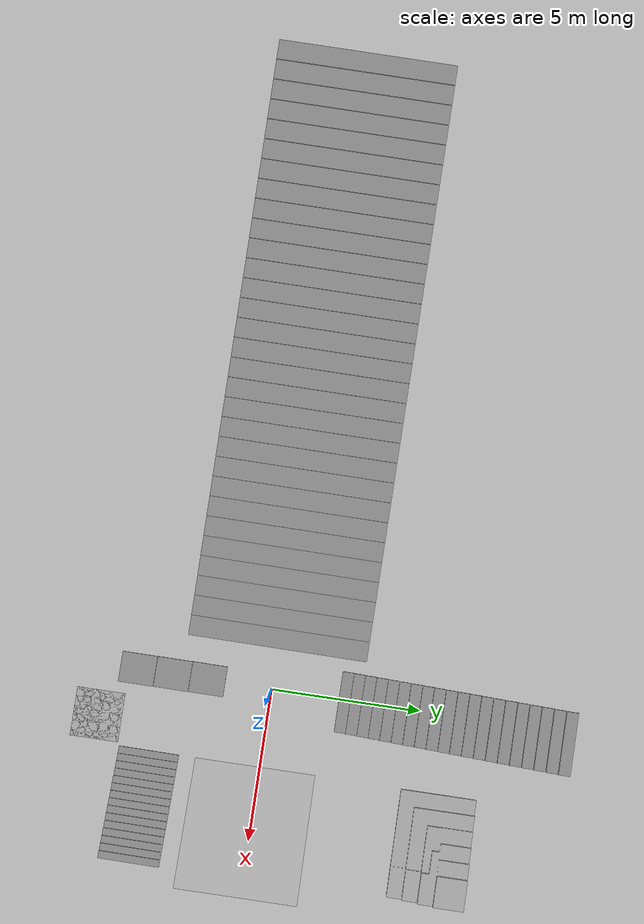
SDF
<sdf version="1.7">
 <world name="default">
  <physics type="ode">
   <max_step_size>0.001</max_step_size>
   <real_time_update_rate>1000</real_time_update_rate>
   <real_time_factor>1</real_time_factor>
   <type>world</type>
   <iters>500</iters>
  </physics>
  <light name="sun" type="directional">
   <pose>0 0 10 0 -0 0</pose>
   <diffuse>0.8 0.8 0.8 1</diffuse>
   <specular>0.2 0.2 0.2 1</specular>
   <attenuation>
    <range>1000</range>
    <constant>0.9</constant>
    <linear>0.01</linear>
    <quadratic>0.001</quadratic>
   </attenuation>
   <direction>-0.5 0.1 -0.9</direction>
   <spot><inner_angle>0</inner_angle><outer_angle>0</outer_angle><falloff>0</falloff></spot>
  </light>
  <model name="ground_plane">
   <static>1</static>
   <link name="link">
    <collision name="collision">
     <geometry><plane><normal>0 0 1</normal><size>100 100</size></plane></geometry>
     <surface>
      <contact><collide_bitmask>65535</collide_bitmask></contact>
      <friction><ode><mu>100</mu><mu2>50</mu2></ode></friction>
     </surface>
    </collision>
    <visual name="visual">
     <cast_shadows>0</cast_shadows>
     <geometry><plane><normal>0 0 1</normal><size>100 100</size></plane></geometry>
     <material>
      <script><uri>file://media/materials/scripts/gazebo.material</uri><name>Gazebo/Grey</name></script>
     </material>
    </visual>
   </link>
  </model>
  <gravity>0 0 -9.8</gravity>
  <magnetic_field>6e-06 2.3e-05 -4.2e-05</magnetic_field>
  <atmosphere type="adiabatic"/>
  <scene><ambient>0.4 0.4 0.4 1</ambient><background>0.7 0.7 0.7 1</background><shadows>1</shadows></scene>
  <spherical_coordinates>
   <surface_model>EARTH_WGS84</surface_model>
   <latitude_deg>0</latitude_deg>
   <longitude_deg>0</longitude_deg>
   <elevation>0</elevation>
   <heading_deg>0</heading_deg>
  </spherical_coordinates>
  <model name="stair4">
   <pose>3.20247 -3.69942 0 0 -0 1.56364</pose>
   <link name="Stairs_0">
    <visual name="Stairs_0_Visual_0">
     <pose>-0 0.508333 0.026667 0 -0 0</pose>
     <geometry><box><size>2 0.233333 0.053333</size></box></geometry>
     <material>
      <script><uri>file://media/materials/scripts/gazebo.material</uri><name>Gazebo/Grey</name></script>
      <ambient>1 1 1 1</ambient>
     </material>
     <meta><layer>0</layer></meta>
    </visual>
    <collision name="Stairs_0_Collision_0">
     <geometry><box><size>2 0.233333 0.053333</size></box></geometry>
     <pose>-0 0.508333 0.026667 0 -0 0</pose>
    </collision>
    <visual name="Stairs_0_Visual_1">
     <pose>-0 0.275 0.08 0 -0 0</pose>
     <geometry><box><size>2 0.233333 0.053333</size></box></geometry>
     <material>
      <script><uri>file://media/materials/scripts/gazebo.material</uri><name>Gazebo/Grey</name></script>
      <ambient>1 1 1 1</ambient>
     </material>
     <meta><layer>0</layer></meta>
    </visual>
    <collision name="Stairs_0_Collision_1">
     <geometry><box><size>2 0.233333 0.053333</size></box></geometry>
     <pose>-0 0.275 0.08 0 -0 0</pose>
    </collision>
    <visual name="Stairs_0_Visual_2">
     <pose>-0 0.041667 0.133333 0 -0 0</pose>
     <geometry><box><size>2 0.233333 0.053333</size></box></geometry>
     <material>
      <script><uri>file://media/materials/scripts/gazebo.material</uri><name>Gazebo/Grey</name></script>
      <ambient>1 1 1 1</ambient>
     </material>
     <meta><layer>0</layer></meta>
    </visual>
    <collision name="Stairs_0_Collision_2">
     <geometry><box><size>2 0.233333 0.053333</size></box></geometry>
     <pose>-0 0.041667 0.133333 0 -0 0</pose>
    </collision>
    <visual name="Stairs_0_Visual_3">
     <pose>-0 -0.191667 0.186667 0 -0 0</pose>
     <geometry><box><size>2 0.233333 0.053333</size></box></geometry>
     <material>
      <script><uri>file://media/materials/scripts/gazebo.material</uri><name>Gazebo/Grey</name></script>
      <ambient>1 1 1 1</ambient>
     </material>
     <meta><layer>0</layer></meta>
    </visual>
    <collision name="Stairs_0_Collision_3">
     <geometry><box><size>2 0.233333 0.053333</size></box></geometry>
     <pose>-0 -0.191667 0.186667 0 -0 0</pose>
    </collision>
    <visual name="Stairs_0_Visual_4">
     <pose>-0 -0.425 0.24 0 -0 0</pose>
     <geometry><box><size>2 0.233333 0.053333</size></box></geometry>
     <material>
      <script><uri>file://media/materials/scripts/gazebo.material</uri><name>Gazebo/Grey</name></script>
      <ambient>1 1 1 1</ambient>
     </material>
     <meta><layer>0</layer></meta>
    </visual>
    <collision name="Stairs_0_Collision_4">
     <geometry><box><size>2 0.233333 0.053333</size></box></geometry>
     <pose>-0 -0.425 0.24 0 -0 0</pose>
    </collision>
    <visual name="Stairs_0_Visual_5">
     <pose>-0 -0.658333 0.293333 0 -0 0</pose>
     <geometry><box><size>2 0.233333 0.053333</size></box></geometry>
     <material>
      <script><uri>file://media/materials/scripts/gazebo.material</uri><name>Gazebo/Grey</name></script>
      <ambient>1 1 1 1</ambient>
     </material>
     <meta><layer>0</layer></meta>
    </visual>
    <collision name="Stairs_0_Collision_5">
     <geometry><box><size>2 0.233333 0.053333</size></box></geometry>
     <pose>-0 -0.658333 0.293333 0 -0 0</pose>
    </collision>
    <visual name="Stairs_0_Visual_6">
     <pose>-0 -0.891667 0.346667 0 -0 0</pose>
     <geometry><box><size>2 0.233333 0.053333</size></box></geometry>
     <material>
      <script><uri>file://media/materials/scripts/gazebo.material</uri><name>Gazebo/Grey</name></script>
      <ambient>1 1 1 1</ambient>
     </material>
     <meta><layer>0</layer></meta>
    </visual>
    <collision name="Stairs_0_Collision_6">
     <geometry><box><size>2 0.233333 0.053333</size></box></geometry>
     <pose>-0 -0.891667 0.346667 0 -0 0</pose>
    </collision>
    <visual name="Stairs_0_Visual_7">
     <pose>-0 -1.125 0.4 0 -0 0</pose>
     <geometry><box><size>2 0.233333 0.053333</size></box></geometry>
     <material>
      <script><uri>file://media/materials/scripts/gazebo.material</uri><name>Gazebo/Grey</name></script>
      <ambient>1 1 1 1</ambient>
     </material>
     <meta><layer>0</layer></meta>
    </visual>
    <collision name="Stairs_0_Collision_7">
     <geometry><box><size>2 0.233333 0.053333</size></box></geometry>
     <pose>-0 -1.125 0.4 0 -0 0</pose>
    </collision>
    <visual name="Stairs_0_Visual_8">
     <pose>-0 -1.35833 0.453333 0 -0 0</pose>
     <geometry><box><size>2 0.233333 0.053333</size></box></geometry>
     <material>
      <script><uri>file://media/materials/scripts/gazebo.material</uri><name>Gazebo/Grey</name></script>
      <ambient>1 1 1 1</ambient>
     </material>
     <meta><layer>0</layer></meta>
    </visual>
    <collision name="Stairs_0_Collision_8">
     <geometry><box><size>2 0.233333 0.053333</size></box></geometry>
     <pose>-0 -1.35833 0.453333 0 -0 0</pose>
    </collision>
    <visual name="Stairs_0_Visual_9">
     <pose>-0 -1.59167 0.506667 0 -0 0</pose>
     <geometry><box><size>2 0.233333 0.053333</size></box></geometry>
     <material>
      <script><uri>file://media/materials/scripts/gazebo.material</uri><name>Gazebo/Grey</name></script>
      <ambient>1 1 1 1</ambient>
     </material>
     <meta><layer>0</layer></meta>
    </visual>
    <collision name="Stairs_0_Collision_9">
     <geometry><box><size>2 0.233333 0.053333</size></box></geometry>
     <pose>-0 -1.59167 0.506667 0 -0 0</pose>
    </collision>
    <visual name="Stairs_0_Visual_10">
     <pose>-0 -1.825 0.56 0 -0 0</pose>
     <geometry><box><size>2 0.233333 0.053333</size></box></geometry>
     <material>
      <script><uri>file://media/materials/scripts/gazebo.material</uri><name>Gazebo/Grey</name></script>
      <ambient>1 1 1 1</ambient>
     </material>
     <meta><layer>0</layer></meta>
    </visual>
    <collision name="Stairs_0_Collision_10">
     <geometry><box><size>2 0.233333 0.053333</size></box></geometry>
     <pose>-0 -1.825 0.56 0 -0 0</pose>
    </collision>
    <visual name="Stairs_0_Visual_11">
     <pose>-0 -2.05833 0.613333 0 -0 0</pose>
     <geometry><box><size>2 0.233333 0.053333</size></box></geometry>
     <material>
      <script><uri>file://media/materials/scripts/gazebo.material</uri><name>Gazebo/Grey</name></script>
      <ambient>1 1 1 1</ambient>
     </material>
     <meta><layer>0</layer></meta>
    </visual>
    <collision name="Stairs_0_Collision_11">
     <geometry><box><size>2 0.233333 0.053333</size></box></geometry>
     <pose>-0 -2.05833 0.613333 0 -0 0</pose>
    </collision>
    <visual name="Stairs_0_Visual_12">
     <pose>-0 -2.29167 0.666667 0 -0 0</pose>
     <geometry><box><size>2 0.233333 0.053333</size></box></geometry>
     <material>
      <script><uri>file://media/materials/scripts/gazebo.material</uri><name>Gazebo/Grey</name></script>
      <ambient>1 1 1 1</ambient>
     </material>
     <meta><layer>0</layer></meta>
    </visual>
    <collision name="Stairs_0_Collision_12">
     <geometry><box><size>2 0.233333 0.053333</size></box></geometry>
     <pose>-0 -2.29167 0.666667 0 -0 0</pose>
    </collision>
    <visual name="Stairs_0_Visual_13">
     <pose>-0 -2.525 0.72 0 -0 0</pose>
     <geometry><box><size>2 0.233333 0.053333</size></box></geometry>
     <material>
      <script><uri>file://media/materials/scripts/gazebo.material</uri><name>Gazebo/Grey</name></script>
      <ambient>1 1 1 1</ambient>
     </material>
     <meta><layer>0</layer></meta>
    </visual>
    <collision name="Stairs_0_Collision_13">
     <geometry><box><size>2 0.233333 0.053333</size></box></geometry>
     <pose>-0 -2.525 0.72 0 -0 0</pose>
    </collision>
    <visual name="Stairs_0_Visual_14">
     <pose>-0 -2.75833 0.773333 0 -0 0</pose>
     <geometry><box><size>2 0.233333 0.053333</size></box></geometry>
     <material>
      <script><uri>file://media/materials/scripts/gazebo.material</uri><name>Gazebo/Grey</name></script>
      <ambient>1 1 1 1</ambient>
     </material>
     <meta><layer>0</layer></meta>
    </visual>
    <collision name="Stairs_0_Collision_14">
     <geometry><box><size>2 0.233333 0.053333</size></box></geometry>
     <pose>-0 -2.75833 0.773333 0 -0 0</pose>
    </collision>
   </link>
   <static>1</static>
  </model>
  <model name="stair6">
   <pose>0.731241 -2.58494 0 0 0 -0.00559</pose>
   <link name="Stairs_3">
    <visual name="Stairs_3_Visual_0">
     <pose>-0.75 0.456667 0.033333 0 -0 0</pose>
     <geometry><box><size>1 1.16667 0.066667</size></box></geometry>
     <material>
      <script><uri>file://media/materials/scripts/gazebo.material</uri><name>Gazebo/Grey</name></script>
      <ambient>1 1 1 1</ambient>
     </material>
     <meta><layer>0</layer></meta>
    </visual>
    <collision name="Stairs_3_Collision_0">
     <geometry><box><size>1 1.16667 0.066667</size></box></geometry>
     <pose>-0.75 0.456667 0.033333 0 -0 0</pose>
    </collision>
    <visual name="Stairs_3_Visual_1">
     <pose>-0.75 -0.71 0.1 0 -0 0</pose>
     <geometry><box><size>1 1.16667 0.066667</size></box></geometry>
     <material>
      <script><uri>file://media/materials/scripts/gazebo.material</uri><name>Gazebo/Grey</name></script>
      <ambient>1 1 1 1</ambient>
     </material>
     <meta><layer>0</layer></meta>
    </visual>
    <collision name="Stairs_3_Collision_1">
     <geometry><box><size>1 1.16667 0.066667</size></box></geometry>
     <pose>-0.75 -0.71 0.1 0 -0 0</pose>
    </collision>
    <visual name="Stairs_3_Visual_2">
     <pose>-0.75 -1.87667 0.166667 0 -0 0</pose>
     <geometry><box><size>1 1.16667 0.066667</size></box></geometry>
     <material>
      <script><uri>file://media/materials/scripts/gazebo.material</uri><name>Gazebo/Grey</name></script>
      <ambient>1 1 1 1</ambient>
     </material>
     <meta><layer>0</layer></meta>
    </visual>
    <collision name="Stairs_3_Collision_2">
     <geometry><box><size>1 1.16667 0.066667</size></box></geometry>
     <pose>-0.75 -1.87667 0.166667 0 -0 0</pose>
    </collision>
   </link>
   <static>1</static>
  </model>
  <model name="cobblestones">
   <static>1</static>
   <link name="link">
    <pose>0 0 -0.09 0 -0 1.5708</pose>
    <collision name="collision">
     <geometry>
      <mesh><uri>model://cobblestones_1/mesh/cobblestones.dae</uri><scale>0.175 0.175 0.25</scale></mesh>
     </geometry>
     <surface>
      <bounce><restitution_coefficient>0.01</restitution_coefficient><threshold>5</threshold></bounce>
      <friction><ode><mu>10</mu><mu2>10</mu2></ode></friction>
      <contact><ode><soft_cfm>0.001</soft_cfm><kp>100000</kp><kd>1000</kd></ode></contact>
     </surface>
    </collision>
    <visual name="visual">
     <geometry>
      <mesh><uri>model://cobblestones_1/mesh/cobblestones.dae</uri><scale>0.175 0.175 0.25</scale></mesh>
     </geometry>
    </visual>
   </link>
   <pose>1.65569 -5.65922 0 0 -0 0</pose>
  </model>
  <model name="complex_stairs">
   <static>1</static>
   <link name="link">
    <pose>0 0 0 1.57 -0 0</pose>
    <collision name="collision">
     <geometry><mesh><uri>model://complex_stairs_1/mesh/stairs.dae</uri><scale>1 1 1</scale></mesh></geometry>
    </collision>
    <visual name="visual">
     <geometry><mesh><uri>model://complex_stairs_1/mesh/stairs.dae</uri><scale>1 1 1</scale></mesh></geometry>
    </visual>
   </link>
   <pose>2.59649 6.727 0 0 -0 0</pose>
  </model>
  <model name="15_degree_ramp">
   <static>1</static>
   <link name="link">
    <collision name="collision">
     <geometry><mesh><uri>model://ramp_45/mesh/ramp_45.dae</uri><scale>2 2 0.5358</scale></mesh></geometry>
     <surface><friction><ode><mu>10</mu><mu2>10</mu2></ode></friction></surface>
    </collision>
    <visual name="visual">
     <geometry><mesh><uri>model://ramp_45/mesh/ramp_45.dae</uri><scale>2 2 0.5358</scale></mesh></geometry>
    </visual>
   </link>
   <pose>4.58676 -0.145618 0 0 -0 -3.13945</pose>
  </model>
  <model name="stair5cm">
   <pose>0.098797 6.02113 0 0 -0 3.13537</pose>
   <link name="Stairs_1">
    <visual name="Stairs_1_Visual_0">
     <pose>0 3.5625 0.05 0 -0 0</pose>
     <geometry><box><size>2 0.375 0.1</size></box></geometry>
     <material>
      <script><uri>file://media/materials/scripts/gazebo.material</uri><name>Gazebo/Grey</name></script>
      <ambient>1 1 1 1</ambient>
     </material>
     <meta><layer>0</layer></meta>
    </visual>
    <collision name="Stairs_1_Collision_0">
     <geometry><box><size>2 0.375 0.1</size></box></geometry>
     <pose>0 3.5625 0.05 0 -0 0</pose>
    </collision>
    <visual name="Stairs_1_Visual_1">
     <pose>0 3.1875 0.15 0 -0 0</pose>
     <geometry><box><size>2 0.375 0.1</size></box></geometry>
     <material>
      <script><uri>file://media/materials/scripts/gazebo.material</uri><name>Gazebo/Grey</name></script>
      <ambient>1 1 1 1</ambient>
     </material>
     <meta><layer>0</layer></meta>
    </visual>
    <collision name="Stairs_1_Collision_1">
     <geometry><box><size>2 0.375 0.1</size></box></geometry>
     <pose>0 3.1875 0.15 0 -0 0</pose>
    </collision>
    <visual name="Stairs_1_Visual_2">
     <pose>0 2.8125 0.25 0 -0 0</pose>
     <geometry><box><size>2 0.375 0.1</size></box></geometry>
     <material>
      <script><uri>file://media/materials/scripts/gazebo.material</uri><name>Gazebo/Grey</name></script>
      <ambient>1 1 1 1</ambient>
     </material>
     <meta><layer>0</layer></meta>
    </visual>
    <collision name="Stairs_1_Collision_2">
     <geometry><box><size>2 0.375 0.1</size></box></geometry>
     <pose>0 2.8125 0.25 0 -0 0</pose>
    </collision>
    <visual name="Stairs_1_Visual_3">
     <pose>0 2.4375 0.35 0 -0 0</pose>
     <geometry><box><size>2 0.375 0.1</size></box></geometry>
     <material>
      <script><uri>file://media/materials/scripts/gazebo.material</uri><name>Gazebo/Grey</name></script>
      <ambient>1 1 1 1</ambient>
     </material>
     <meta><layer>0</layer></meta>
    </visual>
    <collision name="Stairs_1_Collision_3">
     <geometry><box><size>2 0.375 0.1</size></box></geometry>
     <pose>0 2.4375 0.35 0 -0 0</pose>
    </collision>
    <visual name="Stairs_1_Visual_4">
     <pose>0 2.0625 0.45 0 -0 0</pose>
     <geometry><box><size>2 0.375 0.1</size></box></geometry>
     <material>
      <script><uri>file://media/materials/scripts/gazebo.material</uri><name>Gazebo/Grey</name></script>
      <ambient>1 1 1 1</ambient>
     </material>
     <meta><layer>0</layer></meta>
    </visual>
    <collision name="Stairs_1_Collision_4">
     <geometry><box><size>2 0.375 0.1</size></box></geometry>
     <pose>0 2.0625 0.45 0 -0 0</pose>
    </collision>
    <visual name="Stairs_1_Visual_5">
     <pose>0 1.6875 0.55 0 -0 0</pose>
     <geometry><box><size>2 0.375 0.1</size></box></geometry>
     <material>
      <script><uri>file://media/materials/scripts/gazebo.material</uri><name>Gazebo/Grey</name></script>
      <ambient>1 1 1 1</ambient>
     </material>
     <meta><layer>0</layer></meta>
    </visual>
    <collision name="Stairs_1_Collision_5">
     <geometry><box><size>2 0.375 0.1</size></box></geometry>
     <pose>0 1.6875 0.55 0 -0 0</pose>
    </collision>
    <visual name="Stairs_1_Visual_6">
     <pose>0 1.3125 0.65 0 -0 0</pose>
     <geometry><box><size>2 0.375 0.1</size></box></geometry>
     <material>
      <script><uri>file://media/materials/scripts/gazebo.material</uri><name>Gazebo/Grey</name></script>
      <ambient>1 1 1 1</ambient>
     </material>
     <meta><layer>0</layer></meta>
    </visual>
    <collision name="Stairs_1_Collision_6">
     <geometry><box><size>2 0.375 0.1</size></box></geometry>
     <pose>0 1.3125 0.65 0 -0 0</pose>
    </collision>
    <visual name="Stairs_1_Visual_7">
     <pose>0 0.9375 0.75 0 -0 0</pose>
     <geometry><box><size>2 0.375 0.1</size></box></geometry>
     <material>
      <script><uri>file://media/materials/scripts/gazebo.material</uri><name>Gazebo/Grey</name></script>
      <ambient>1 1 1 1</ambient>
     </material>
     <meta><layer>0</layer></meta>
    </visual>
    <collision name="Stairs_1_Collision_7">
     <geometry><box><size>2 0.375 0.1</size></box></geometry>
     <pose>0 0.9375 0.75 0 -0 0</pose>
    </collision>
    <visual name="Stairs_1_Visual_8">
     <pose>0 0.5625 0.85 0 -0 0</pose>
     <geometry><box><size>2 0.375 0.1</size></box></geometry>
     <material>
      <script><uri>file://media/materials/scripts/gazebo.material</uri><name>Gazebo/Grey</name></script>
      <ambient>1 1 1 1</ambient>
     </material>
     <meta><layer>0</layer></meta>
    </visual>
    <collision name="Stairs_1_Collision_8">
     <geometry><box><size>2 0.375 0.1</size></box></geometry>
     <pose>0 0.5625 0.85 0 -0 0</pose>
    </collision>
    <visual name="Stairs_1_Visual_9">
     <pose>0 0.1875 0.95 0 -0 0</pose>
     <geometry><box><size>2 0.375 0.1</size></box></geometry>
     <material>
      <script><uri>file://media/materials/scripts/gazebo.material</uri><name>Gazebo/Grey</name></script>
      <ambient>1 1 1 1</ambient>
     </material>
     <meta><layer>0</layer></meta>
    </visual>
    <collision name="Stairs_1_Collision_9">
     <geometry><box><size>2 0.375 0.1</size></box></geometry>
     <pose>0 0.1875 0.95 0 -0 0</pose>
    </collision>
    <visual name="Stairs_1_Visual_10">
     <pose>0 -0.1875 1.05 0 -0 0</pose>
     <geometry><box><size>2 0.375 0.1</size></box></geometry>
     <material>
      <script><uri>file://media/materials/scripts/gazebo.material</uri><name>Gazebo/Grey</name></script>
      <ambient>1 1 1 1</ambient>
     </material>
     <meta><layer>0</layer></meta>
    </visual>
    <collision name="Stairs_1_Collision_10">
     <geometry><box><size>2 0.375 0.1</size></box></geometry>
     <pose>0 -0.1875 1.05 0 -0 0</pose>
    </collision>
    <visual name="Stairs_1_Visual_11">
     <pose>0 -0.5625 1.15 0 -0 0</pose>
     <geometry><box><size>2 0.375 0.1</size></box></geometry>
     <material>
      <script><uri>file://media/materials/scripts/gazebo.material</uri><name>Gazebo/Grey</name></script>
      <ambient>1 1 1 1</ambient>
     </material>
     <meta><layer>0</layer></meta>
    </visual>
    <collision name="Stairs_1_Collision_11">
     <geometry><box><size>2 0.375 0.1</size></box></geometry>
     <pose>0 -0.5625 1.15 0 -0 0</pose>
    </collision>
    <visual name="Stairs_1_Visual_12">
     <pose>0 -0.9375 1.25 0 -0 0</pose>
     <geometry><box><size>2 0.375 0.1</size></box></geometry>
     <material>
      <script><uri>file://media/materials/scripts/gazebo.material</uri><name>Gazebo/Grey</name></script>
      <ambient>1 1 1 1</ambient>
     </material>
     <meta><layer>0</layer></meta>
    </visual>
    <collision name="Stairs_1_Collision_12">
     <geometry><box><size>2 0.375 0.1</size></box></geometry>
     <pose>0 -0.9375 1.25 0 -0 0</pose>
    </collision>
    <visual name="Stairs_1_Visual_13">
     <pose>0 -1.3125 1.35 0 -0 0</pose>
     <geometry><box><size>2 0.375 0.1</size></box></geometry>
     <material>
      <script><uri>file://media/materials/scripts/gazebo.material</uri><name>Gazebo/Grey</name></script>
      <ambient>1 1 1 1</ambient>
     </material>
     <meta><layer>0</layer></meta>
    </visual>
    <collision name="Stairs_1_Collision_13">
     <geometry><box><size>2 0.375 0.1</size></box></geometry>
     <pose>0 -1.3125 1.35 0 -0 0</pose>
    </collision>
    <visual name="Stairs_1_Visual_14">
     <pose>0 -1.6875 1.45 0 -0 0</pose>
     <geometry><box><size>2 0.375 0.1</size></box></geometry>
     <material>
      <script><uri>file://media/materials/scripts/gazebo.material</uri><name>Gazebo/Grey</name></script>
      <ambient>1 1 1 1</ambient>
     </material>
     <meta><layer>0</layer></meta>
    </visual>
    <collision name="Stairs_1_Collision_14">
     <geometry><box><size>2 0.375 0.1</size></box></geometry>
     <pose>0 -1.6875 1.45 0 -0 0</pose>
    </collision>
    <visual name="Stairs_1_Visual_15">
     <pose>0 -2.0625 1.55 0 -0 0</pose>
     <geometry><box><size>2 0.375 0.1</size></box></geometry>
     <material>
      <script><uri>file://media/materials/scripts/gazebo.material</uri><name>Gazebo/Grey</name></script>
      <ambient>1 1 1 1</ambient>
     </material>
     <meta><layer>0</layer></meta>
    </visual>
    <collision name="Stairs_1_Collision_15">
     <geometry><box><size>2 0.375 0.1</size></box></geometry>
     <pose>0 -2.0625 1.55 0 -0 0</pose>
    </collision>
    <visual name="Stairs_1_Visual_16">
     <pose>0 -2.4375 1.65 0 -0 0</pose>
     <geometry><box><size>2 0.375 0.1</size></box></geometry>
     <material>
      <script><uri>file://media/materials/scripts/gazebo.material</uri><name>Gazebo/Grey</name></script>
      <ambient>1 1 1 1</ambient>
     </material>
     <meta><layer>0</layer></meta>
    </visual>
    <collision name="Stairs_1_Collision_16">
     <geometry><box><size>2 0.375 0.1</size></box></geometry>
     <pose>0 -2.4375 1.65 0 -0 0</pose>
    </collision>
    <visual name="Stairs_1_Visual_17">
     <pose>0 -2.8125 1.75 0 -0 0</pose>
     <geometry><box><size>2 0.375 0.1</size></box></geometry>
     <material>
      <script><uri>file://media/materials/scripts/gazebo.material</uri><name>Gazebo/Grey</name></script>
      <ambient>1 1 1 1</ambient>
     </material>
     <meta><layer>0</layer></meta>
    </visual>
    <collision name="Stairs_1_Collision_17">
     <geometry><box><size>2 0.375 0.1</size></box></geometry>
     <pose>0 -2.8125 1.75 0 -0 0</pose>
    </collision>
    <visual name="Stairs_1_Visual_18">
     <pose>0 -3.1875 1.85 0 -0 0</pose>
     <geometry><box><size>2 0.375 0.1</size></box></geometry>
     <material>
      <script><uri>file://media/materials/scripts/gazebo.material</uri><name>Gazebo/Grey</name></script>
      <ambient>1 1 1 1</ambient>
     </material>
     <meta><layer>0</layer></meta>
    </visual>
    <collision name="Stairs_1_Collision_18">
     <geometry><box><size>2 0.375 0.1</size></box></geometry>
     <pose>0 -3.1875 1.85 0 -0 0</pose>
    </collision>
    <visual name="Stairs_1_Visual_19">
     <pose>0 -3.5625 1.95 0 -0 0</pose>
     <geometry><box><size>2 0.375 0.1</size></box></geometry>
     <material>
      <script><uri>file://media/materials/scripts/gazebo.material</uri><name>Gazebo/Grey</name></script>
      <ambient>1 1 1 1</ambient>
     </material>
     <meta><layer>0</layer></meta>
    </visual>
    <collision name="Stairs_1_Collision_19">
     <geometry><box><size>2 0.375 0.1</size></box></geometry>
     <pose>0 -3.5625 1.95 0 -0 0</pose>
    </collision>
   </link>
   <static>1</static>
  </model>
  <model name="stair0.5">
   <pose>-11.3611 0.034345 0 0 0 -1.57612</pose>
   <link name="Stairs_1">
    <visual name="Stairs_1_Visual_0">
     <pose>-0.025 9.66667 0.025 0 -0 0</pose>
     <geometry><box><size>6 0.666667 0.05</size></box></geometry>
     <material>
      <script><uri>file://media/materials/scripts/gazebo.material</uri><name>Gazebo/Grey</name></script>
      <ambient>1 1 1 1</ambient>
     </material>
     <meta><layer>0</layer></meta>
    </visual>
    <collision name="Stairs_1_Collision_0">
     <geometry><box><size>6 0.666667 0.05</size></box></geometry>
     <pose>-0.025 9.66667 0.025 0 -0 0</pose>
    </collision>
    <visual name="Stairs_1_Visual_1">
     <pose>-0.025 9 0.075 0 -0 0</pose>
     <geometry><box><size>6 0.666667 0.05</size></box></geometry>
     <material>
      <script><uri>file://media/materials/scripts/gazebo.material</uri><name>Gazebo/Grey</name></script>
      <ambient>1 1 1 1</ambient>
     </material>
     <meta><layer>0</layer></meta>
    </visual>
    <collision name="Stairs_1_Collision_1">
     <geometry><box><size>6 0.666667 0.05</size></box></geometry>
     <pose>-0.025 9 0.075 0 -0 0</pose>
    </collision>
    <visual name="Stairs_1_Visual_2">
     <pose>-0.025 8.33333 0.125 0 -0 0</pose>
     <geometry><box><size>6 0.666667 0.05</size></box></geometry>
     <material>
      <script><uri>file://media/materials/scripts/gazebo.material</uri><name>Gazebo/Grey</name></script>
      <ambient>1 1 1 1</ambient>
     </material>
     <meta><layer>0</layer></meta>
    </visual>
    <collision name="Stairs_1_Collision_2">
     <geometry><box><size>6 0.666667 0.05</size></box></geometry>
     <pose>-0.025 8.33333 0.125 0 -0 0</pose>
    </collision>
    <visual name="Stairs_1_Visual_3">
     <pose>-0.025 7.66667 0.175 0 -0 0</pose>
     <geometry><box><size>6 0.666667 0.05</size></box></geometry>
     <material>
      <script><uri>file://media/materials/scripts/gazebo.material</uri><name>Gazebo/Grey</name></script>
      <ambient>1 1 1 1</ambient>
     </material>
     <meta><layer>0</layer></meta>
    </visual>
    <collision name="Stairs_1_Collision_3">
     <geometry><box><size>6 0.666667 0.05</size></box></geometry>
     <pose>-0.025 7.66667 0.175 0 -0 0</pose>
    </collision>
    <visual name="Stairs_1_Visual_4">
     <pose>-0.025 7 0.225 0 -0 0</pose>
     <geometry><box><size>6 0.666667 0.05</size></box></geometry>
     <material>
      <script><uri>file://media/materials/scripts/gazebo.material</uri><name>Gazebo/Grey</name></script>
      <ambient>1 1 1 1</ambient>
     </material>
     <meta><layer>0</layer></meta>
    </visual>
    <collision name="Stairs_1_Collision_4">
     <geometry><box><size>6 0.666667 0.05</size></box></geometry>
     <pose>-0.025 7 0.225 0 -0 0</pose>
    </collision>
    <visual name="Stairs_1_Visual_5">
     <pose>-0.025 6.33333 0.275 0 -0 0</pose>
     <geometry><box><size>6 0.666667 0.05</size></box></geometry>
     <material>
      <script><uri>file://media/materials/scripts/gazebo.material</uri><name>Gazebo/Grey</name></script>
      <ambient>1 1 1 1</ambient>
     </material>
     <meta><layer>0</layer></meta>
    </visual>
    <collision name="Stairs_1_Collision_5">
     <geometry><box><size>6 0.666667 0.05</size></box></geometry>
     <pose>-0.025 6.33333 0.275 0 -0 0</pose>
    </collision>
    <visual name="Stairs_1_Visual_6">
     <pose>-0.025 5.66667 0.325 0 -0 0</pose>
     <geometry><box><size>6 0.666667 0.05</size></box></geometry>
     <material>
      <script><uri>file://media/materials/scripts/gazebo.material</uri><name>Gazebo/Grey</name></script>
      <ambient>1 1 1 1</ambient>
     </material>
     <meta><layer>0</layer></meta>
    </visual>
    <collision name="Stairs_1_Collision_6">
     <geometry><box><size>6 0.666667 0.05</size></box></geometry>
     <pose>-0.025 5.66667 0.325 0 -0 0</pose>
    </collision>
    <visual name="Stairs_1_Visual_7">
     <pose>-0.025 5 0.375 0 -0 0</pose>
     <geometry><box><size>6 0.666667 0.05</size></box></geometry>
     <material>
      <script><uri>file://media/materials/scripts/gazebo.material</uri><name>Gazebo/Grey</name></script>
      <ambient>1 1 1 1</ambient>
     </material>
     <meta><layer>0</layer></meta>
    </visual>
    <collision name="Stairs_1_Collision_7">
     <geometry><box><size>6 0.666667 0.05</size></box></geometry>
     <pose>-0.025 5 0.375 0 -0 0</pose>
    </collision>
    <visual name="Stairs_1_Visual_8">
     <pose>-0.025 4.33333 0.425 0 -0 0</pose>
     <geometry><box><size>6 0.666667 0.05</size></box></geometry>
     <material>
      <script><uri>file://media/materials/scripts/gazebo.material</uri><name>Gazebo/Grey</name></script>
      <ambient>1 1 1 1</ambient>
     </material>
     <meta><layer>0</layer></meta>
    </visual>
    <collision name="Stairs_1_Collision_8">
     <geometry><box><size>6 0.666667 0.05</size></box></geometry>
     <pose>-0.025 4.33333 0.425 0 -0 0</pose>
    </collision>
    <visual name="Stairs_1_Visual_9">
     <pose>-0.025 3.66667 0.475 0 -0 0</pose>
     <geometry><box><size>6 0.666667 0.05</size></box></geometry>
     <material>
      <script><uri>file://media/materials/scripts/gazebo.material</uri><name>Gazebo/Grey</name></script>
      <ambient>1 1 1 1</ambient>
     </material>
     <meta><layer>0</layer></meta>
    </visual>
    <collision name="Stairs_1_Collision_9">
     <geometry><box><size>6 0.666667 0.05</size></box></geometry>
     <pose>-0.025 3.66667 0.475 0 -0 0</pose>
    </collision>
    <visual name="Stairs_1_Visual_10">
     <pose>-0.025 3 0.525 0 -0 0</pose>
     <geometry><box><size>6 0.666667 0.05</size></box></geometry>
     <material>
      <script><uri>file://media/materials/scripts/gazebo.material</uri><name>Gazebo/Grey</name></script>
      <ambient>1 1 1 1</ambient>
     </material>
     <meta><layer>0</layer></meta>
    </visual>
    <collision name="Stairs_1_Collision_10">
     <geometry><box><size>6 0.666667 0.05</size></box></geometry>
     <pose>-0.025 3 0.525 0 -0 0</pose>
    </collision>
    <visual name="Stairs_1_Visual_11">
     <pose>-0.025 2.33333 0.575 0 -0 0</pose>
     <geometry><box><size>6 0.666667 0.05</size></box></geometry>
     <material>
      <script><uri>file://media/materials/scripts/gazebo.material</uri><name>Gazebo/Grey</name></script>
      <ambient>1 1 1 1</ambient>
     </material>
     <meta><layer>0</layer></meta>
    </visual>
    <collision name="Stairs_1_Collision_11">
     <geometry><box><size>6 0.666667 0.05</size></box></geometry>
     <pose>-0.025 2.33333 0.575 0 -0 0</pose>
    </collision>
    <visual name="Stairs_1_Visual_12">
     <pose>-0.025 1.66667 0.625 0 -0 0</pose>
     <geometry><box><size>6 0.666667 0.05</size></box></geometry>
     <material>
      <script><uri>file://media/materials/scripts/gazebo.material</uri><name>Gazebo/Grey</name></script>
      <ambient>1 1 1 1</ambient>
     </material>
     <meta><layer>0</layer></meta>
    </visual>
    <collision name="Stairs_1_Collision_12">
     <geometry><box><size>6 0.666667 0.05</size></box></geometry>
     <pose>-0.025 1.66667 0.625 0 -0 0</pose>
    </collision>
    <visual name="Stairs_1_Visual_13">
     <pose>-0.025 1 0.675 0 -0 0</pose>
     <geometry><box><size>6 0.666667 0.05</size></box></geometry>
     <material>
      <script><uri>file://media/materials/scripts/gazebo.material</uri><name>Gazebo/Grey</name></script>
      <ambient>1 1 1 1</ambient>
     </material>
     <meta><layer>0</layer></meta>
    </visual>
    <collision name="Stairs_1_Collision_13">
     <geometry><box><size>6 0.666667 0.05</size></box></geometry>
     <pose>-0.025 1 0.675 0 -0 0</pose>
    </collision>
    <visual name="Stairs_1_Visual_14">
     <pose>-0.025 0.333333 0.725 0 -0 0</pose>
     <geometry><box><size>6 0.666667 0.05</size></box></geometry>
     <material>
      <script><uri>file://media/materials/scripts/gazebo.material</uri><name>Gazebo/Grey</name></script>
      <ambient>1 1 1 1</ambient>
     </material>
     <meta><layer>0</layer></meta>
    </visual>
    <collision name="Stairs_1_Collision_14">
     <geometry><box><size>6 0.666667 0.05</size></box></geometry>
     <pose>-0.025 0.333333 0.725 0 -0 0</pose>
    </collision>
    <visual name="Stairs_1_Visual_15">
     <pose>-0.025 -0.333333 0.775 0 -0 0</pose>
     <geometry><box><size>6 0.666667 0.05</size></box></geometry>
     <material>
      <script><uri>file://media/materials/scripts/gazebo.material</uri><name>Gazebo/Grey</name></script>
      <ambient>1 1 1 1</ambient>
     </material>
     <meta><layer>0</layer></meta>
    </visual>
    <collision name="Stairs_1_Collision_15">
     <geometry><box><size>6 0.666667 0.05</size></box></geometry>
     <pose>-0.025 -0.333333 0.775 0 -0 0</pose>
    </collision>
    <visual name="Stairs_1_Visual_16">
     <pose>-0.025 -1 0.825 0 -0 0</pose>
     <geometry><box><size>6 0.666667 0.05</size></box></geometry>
     <material>
      <script><uri>file://media/materials/scripts/gazebo.material</uri><name>Gazebo/Grey</name></script>
      <ambient>1 1 1 1</ambient>
     </material>
     <meta><layer>0</layer></meta>
    </visual>
    <collision name="Stairs_1_Collision_16">
     <geometry><box><size>6 0.666667 0.05</size></box></geometry>
     <pose>-0.025 -1 0.825 0 -0 0</pose>
    </collision>
    <visual name="Stairs_1_Visual_17">
     <pose>-0.025 -1.66667 0.875 0 -0 0</pose>
     <geometry><box><size>6 0.666667 0.05</size></box></geometry>
     <material>
      <script><uri>file://media/materials/scripts/gazebo.material</uri><name>Gazebo/Grey</name></script>
      <ambient>1 1 1 1</ambient>
     </material>
     <meta><layer>0</layer></meta>
    </visual>
    <collision name="Stairs_1_Collision_17">
     <geometry><box><size>6 0.666667 0.05</size></box></geometry>
     <pose>-0.025 -1.66667 0.875 0 -0 0</pose>
    </collision>
    <visual name="Stairs_1_Visual_18">
     <pose>-0.025 -2.33333 0.925 0 -0 0</pose>
     <geometry><box><size>6 0.666667 0.05</size></box></geometry>
     <material>
      <script><uri>file://media/materials/scripts/gazebo.material</uri><name>Gazebo/Grey</name></script>
      <ambient>1 1 1 1</ambient>
     </material>
     <meta><layer>0</layer></meta>
    </visual>
    <collision name="Stairs_1_Collision_18">
     <geometry><box><size>6 0.666667 0.05</size></box></geometry>
     <pose>-0.025 -2.33333 0.925 0 -0 0</pose>
    </collision>
    <visual name="Stairs_1_Visual_19">
     <pose>-0.025 -3 0.975 0 -0 0</pose>
     <geometry><box><size>6 0.666667 0.05</size></box></geometry>
     <material>
      <script><uri>file://media/materials/scripts/gazebo.material</uri><name>Gazebo/Grey</name></script>
      <ambient>1 1 1 1</ambient>
     </material>
     <meta><layer>0</layer></meta>
    </visual>
    <collision name="Stairs_1_Collision_19">
     <geometry><box><size>6 0.666667 0.05</size></box></geometry>
     <pose>-0.025 -3 0.975 0 -0 0</pose>
    </collision>
    <visual name="Stairs_1_Visual_20">
     <pose>-0.025 -3.66667 1.025 0 -0 0</pose>
     <geometry><box><size>6 0.666667 0.05</size></box></geometry>
     <material>
      <script><uri>file://media/materials/scripts/gazebo.material</uri><name>Gazebo/Grey</name></script>
      <ambient>1 1 1 1</ambient>
     </material>
     <meta><layer>0</layer></meta>
    </visual>
    <collision name="Stairs_1_Collision_20">
     <geometry><box><size>6 0.666667 0.05</size></box></geometry>
     <pose>-0.025 -3.66667 1.025 0 -0 0</pose>
    </collision>
    <visual name="Stairs_1_Visual_21">
     <pose>-0.025 -4.33333 1.075 0 -0 0</pose>
     <geometry><box><size>6 0.666667 0.05</size></box></geometry>
     <material>
      <script><uri>file://media/materials/scripts/gazebo.material</uri><name>Gazebo/Grey</name></script>
      <ambient>1 1 1 1</ambient>
     </material>
     <meta><layer>0</layer></meta>
    </visual>
    <collision name="Stairs_1_Collision_21">
     <geometry><box><size>6 0.666667 0.05</size></box></geometry>
     <pose>-0.025 -4.33333 1.075 0 -0 0</pose>
    </collision>
    <visual name="Stairs_1_Visual_22">
     <pose>-0.025 -5 1.125 0 -0 0</pose>
     <geometry><box><size>6 0.666667 0.05</size></box></geometry>
     <material>
      <script><uri>file://media/materials/scripts/gazebo.material</uri><name>Gazebo/Grey</name></script>
      <ambient>1 1 1 1</ambient>
     </material>
     <meta><layer>0</layer></meta>
    </visual>
    <collision name="Stairs_1_Collision_22">
     <geometry><box><size>6 0.666667 0.05</size></box></geometry>
     <pose>-0.025 -5 1.125 0 -0 0</pose>
    </collision>
    <visual name="Stairs_1_Visual_23">
     <pose>-0.025 -5.66667 1.175 0 -0 0</pose>
     <geometry><box><size>6 0.666667 0.05</size></box></geometry>
     <material>
      <script><uri>file://media/materials/scripts/gazebo.material</uri><name>Gazebo/Grey</name></script>
      <ambient>1 1 1 1</ambient>
     </material>
     <meta><layer>0</layer></meta>
    </visual>
    <collision name="Stairs_1_Collision_23">
     <geometry><box><size>6 0.666667 0.05</size></box></geometry>
     <pose>-0.025 -5.66667 1.175 0 -0 0</pose>
    </collision>
    <visual name="Stairs_1_Visual_24">
     <pose>-0.025 -6.33333 1.225 0 -0 0</pose>
     <geometry><box><size>6 0.666667 0.05</size></box></geometry>
     <material>
      <script><uri>file://media/materials/scripts/gazebo.material</uri><name>Gazebo/Grey</name></script>
      <ambient>1 1 1 1</ambient>
     </material>
     <meta><layer>0</layer></meta>
    </visual>
    <collision name="Stairs_1_Collision_24">
     <geometry><box><size>6 0.666667 0.05</size></box></geometry>
     <pose>-0.025 -6.33333 1.225 0 -0 0</pose>
    </collision>
    <visual name="Stairs_1_Visual_25">
     <pose>-0.025 -7 1.275 0 -0 0</pose>
     <geometry><box><size>6 0.666667 0.05</size></box></geometry>
     <material>
      <script><uri>file://media/materials/scripts/gazebo.material</uri><name>Gazebo/Grey</name></script>
      <ambient>1 1 1 1</ambient>
     </material>
     <meta><layer>0</layer></meta>
    </visual>
    <collision name="Stairs_1_Collision_25">
     <geometry><box><size>6 0.666667 0.05</size></box></geometry>
     <pose>-0.025 -7 1.275 0 -0 0</pose>
    </collision>
    <visual name="Stairs_1_Visual_26">
     <pose>-0.025 -7.66667 1.325 0 -0 0</pose>
     <geometry><box><size>6 0.666667 0.05</size></box></geometry>
     <material>
      <script><uri>file://media/materials/scripts/gazebo.material</uri><name>Gazebo/Grey</name></script>
      <ambient>1 1 1 1</ambient>
     </material>
     <meta><layer>0</layer></meta>
    </visual>
    <collision name="Stairs_1_Collision_26">
     <geometry><box><size>6 0.666667 0.05</size></box></geometry>
     <pose>-0.025 -7.66667 1.325 0 -0 0</pose>
    </collision>
    <visual name="Stairs_1_Visual_27">
     <pose>-0.025 -8.33333 1.375 0 -0 0</pose>
     <geometry><box><size>6 0.666667 0.05</size></box></geometry>
     <material>
      <script><uri>file://media/materials/scripts/gazebo.material</uri><name>Gazebo/Grey</name></script>
      <ambient>1 1 1 1</ambient>
     </material>
     <meta><layer>0</layer></meta>
    </visual>
    <collision name="Stairs_1_Collision_27">
     <geometry><box><size>6 0.666667 0.05</size></box></geometry>
     <pose>-0.025 -8.33333 1.375 0 -0 0</pose>
    </collision>
    <visual name="Stairs_1_Visual_28">
     <pose>-0.025 -9 1.425 0 -0 0</pose>
     <geometry><box><size>6 0.666667 0.05</size></box></geometry>
     <material>
      <script><uri>file://media/materials/scripts/gazebo.material</uri><name>Gazebo/Grey</name></script>
      <ambient>1 1 1 1</ambient>
     </material>
     <meta><layer>0</layer></meta>
    </visual>
    <collision name="Stairs_1_Collision_28">
     <geometry><box><size>6 0.666667 0.05</size></box></geometry>
     <pose>-0.025 -9 1.425 0 -0 0</pose>
    </collision>
    <visual name="Stairs_1_Visual_29">
     <pose>-0.025 -9.66667 1.475 0 -0 0</pose>
     <geometry><box><size>6 0.666667 0.05</size></box></geometry>
     <material>
      <script><uri>file://media/materials/scripts/gazebo.material</uri><name>Gazebo/Grey</name></script>
      <ambient>1 1 1 1</ambient>
     </material>
     <meta><layer>0</layer></meta>
    </visual>
    <collision name="Stairs_1_Collision_29">
     <geometry><box><size>6 0.666667 0.05</size></box></geometry>
     <pose>-0.025 -9.66667 1.475 0 -0 0</pose>
    </collision>
   </link>
   <static>1</static>
  </model>
 </world>
</sdf>
